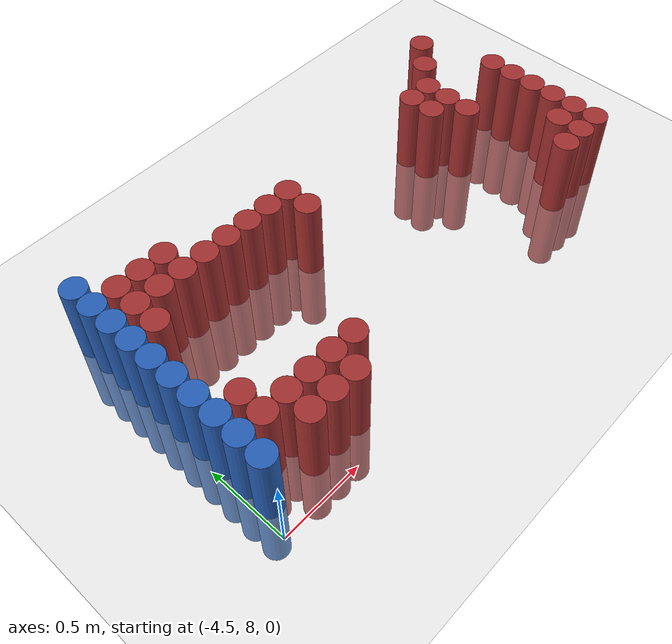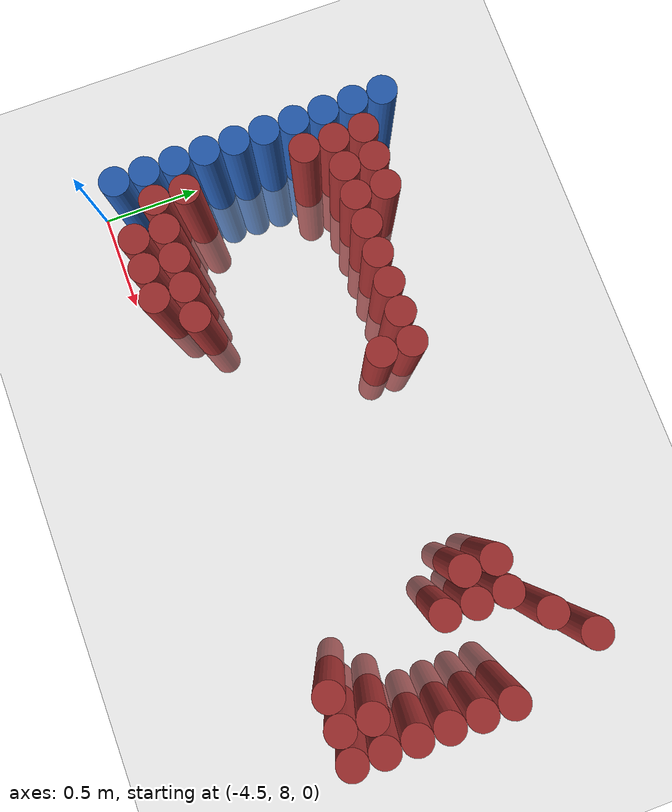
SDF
<sdf version="1.6">
 <world name="default">
  <model name="ground_plane">
   <static>1</static>
   <link name="link">
    <collision name="collision">
     <geometry><plane><normal>0 0 1</normal><size>100 100</size></plane></geometry>
     <surface><friction><ode><mu>100</mu><mu2>50</mu2></ode></friction></surface>
    </collision>
    <visual name="visual">
     <cast_shadows>0</cast_shadows>
     <geometry><plane><normal>0 0 1</normal><size>100 100</size></plane></geometry>
     <material>
      <script><uri>file://media/materials/scripts/gazebo.material</uri><name>Gazebo/Grey</name></script>
     </material>
    </visual>
   </link>
  </model>
  <model name="unit_cylinder_116">
   <static>1</static>
   <pose>-4.425000 8.175000 0.000000 0.000000 0.000000 0.000000</pose>
   <link name="link">
    <inertial>
     <mass>1</mass>
     <inertia><ixx>0.145833</ixx><ixy>0</ixy><ixz>0</ixz><iyy>0.145833</iyy><iyz>0</iyz><izz>0.125</izz></inertia>
    </inertial>
    <collision name="collision">
     <geometry><cylinder><radius>0.075000</radius><length>1</length></cylinder></geometry>
    </collision>
    <visual name="visual">
     <geometry><cylinder><radius>0.075000</radius><length>1</length></cylinder></geometry>
     <material>
      <ambient>0.152000 0.379000 0.720000 1</ambient>
      <diffuse>0.152000 0.379000 0.720000 1</diffuse>
     </material>
     <material>
      <script><name>Gazebo/Grey</name><uri>file://media/materials/scripts/gazebo.material</uri></script>
     </material>
    </visual>
   </link>
  </model>
  <model name="unit_cylinder_117">
   <static>1</static>
   <pose>-4.425000 8.325000 0.000000 0.000000 0.000000 0.000000</pose>
   <link name="link">
    <inertial>
     <mass>1</mass>
     <inertia><ixx>0.145833</ixx><ixy>0</ixy><ixz>0</ixz><iyy>0.145833</iyy><iyz>0</iyz><izz>0.125</izz></inertia>
    </inertial>
    <collision name="collision">
     <geometry><cylinder><radius>0.075000</radius><length>1</length></cylinder></geometry>
    </collision>
    <visual name="visual">
     <geometry><cylinder><radius>0.075000</radius><length>1</length></cylinder></geometry>
     <material>
      <ambient>0.152000 0.379000 0.720000 1</ambient>
      <diffuse>0.152000 0.379000 0.720000 1</diffuse>
     </material>
     <material>
      <script><name>Gazebo/Grey</name><uri>file://media/materials/scripts/gazebo.material</uri></script>
     </material>
    </visual>
   </link>
  </model>
  <model name="unit_cylinder_118">
   <static>1</static>
   <pose>-4.425000 8.475000 0.000000 0.000000 0.000000 0.000000</pose>
   <link name="link">
    <inertial>
     <mass>1</mass>
     <inertia><ixx>0.145833</ixx><ixy>0</ixy><ixz>0</ixz><iyy>0.145833</iyy><iyz>0</iyz><izz>0.125</izz></inertia>
    </inertial>
    <collision name="collision">
     <geometry><cylinder><radius>0.075000</radius><length>1</length></cylinder></geometry>
    </collision>
    <visual name="visual">
     <geometry><cylinder><radius>0.075000</radius><length>1</length></cylinder></geometry>
     <material>
      <ambient>0.152000 0.379000 0.720000 1</ambient>
      <diffuse>0.152000 0.379000 0.720000 1</diffuse>
     </material>
     <material>
      <script><name>Gazebo/Grey</name><uri>file://media/materials/scripts/gazebo.material</uri></script>
     </material>
    </visual>
   </link>
  </model>
  <model name="unit_cylinder_119">
   <static>1</static>
   <pose>-4.425000 8.625000 0.000000 0.000000 0.000000 0.000000</pose>
   <link name="link">
    <inertial>
     <mass>1</mass>
     <inertia><ixx>0.145833</ixx><ixy>0</ixy><ixz>0</ixz><iyy>0.145833</iyy><iyz>0</iyz><izz>0.125</izz></inertia>
    </inertial>
    <collision name="collision">
     <geometry><cylinder><radius>0.075000</radius><length>1</length></cylinder></geometry>
    </collision>
    <visual name="visual">
     <geometry><cylinder><radius>0.075000</radius><length>1</length></cylinder></geometry>
     <material>
      <ambient>0.152000 0.379000 0.720000 1</ambient>
      <diffuse>0.152000 0.379000 0.720000 1</diffuse>
     </material>
     <material>
      <script><name>Gazebo/Grey</name><uri>file://media/materials/scripts/gazebo.material</uri></script>
     </material>
    </visual>
   </link>
  </model>
  <model name="unit_cylinder_120">
   <static>1</static>
   <pose>-4.425000 8.775000 0.000000 0.000000 0.000000 0.000000</pose>
   <link name="link">
    <inertial>
     <mass>1</mass>
     <inertia><ixx>0.145833</ixx><ixy>0</ixy><ixz>0</ixz><iyy>0.145833</iyy><iyz>0</iyz><izz>0.125</izz></inertia>
    </inertial>
    <collision name="collision">
     <geometry><cylinder><radius>0.075000</radius><length>1</length></cylinder></geometry>
    </collision>
    <visual name="visual">
     <geometry><cylinder><radius>0.075000</radius><length>1</length></cylinder></geometry>
     <material>
      <ambient>0.152000 0.379000 0.720000 1</ambient>
      <diffuse>0.152000 0.379000 0.720000 1</diffuse>
     </material>
     <material>
      <script><name>Gazebo/Grey</name><uri>file://media/materials/scripts/gazebo.material</uri></script>
     </material>
    </visual>
   </link>
  </model>
  <model name="unit_cylinder_121">
   <static>1</static>
   <pose>-4.425000 8.925000 0.000000 0.000000 0.000000 0.000000</pose>
   <link name="link">
    <inertial>
     <mass>1</mass>
     <inertia><ixx>0.145833</ixx><ixy>0</ixy><ixz>0</ixz><iyy>0.145833</iyy><iyz>0</iyz><izz>0.125</izz></inertia>
    </inertial>
    <collision name="collision">
     <geometry><cylinder><radius>0.075000</radius><length>1</length></cylinder></geometry>
    </collision>
    <visual name="visual">
     <geometry><cylinder><radius>0.075000</radius><length>1</length></cylinder></geometry>
     <material>
      <ambient>0.152000 0.379000 0.720000 1</ambient>
      <diffuse>0.152000 0.379000 0.720000 1</diffuse>
     </material>
     <material>
      <script><name>Gazebo/Grey</name><uri>file://media/materials/scripts/gazebo.material</uri></script>
     </material>
    </visual>
   </link>
  </model>
  <model name="unit_cylinder_122">
   <static>1</static>
   <pose>-4.425000 9.075000 0.000000 0.000000 0.000000 0.000000</pose>
   <link name="link">
    <inertial>
     <mass>1</mass>
     <inertia><ixx>0.145833</ixx><ixy>0</ixy><ixz>0</ixz><iyy>0.145833</iyy><iyz>0</iyz><izz>0.125</izz></inertia>
    </inertial>
    <collision name="collision">
     <geometry><cylinder><radius>0.075000</radius><length>1</length></cylinder></geometry>
    </collision>
    <visual name="visual">
     <geometry><cylinder><radius>0.075000</radius><length>1</length></cylinder></geometry>
     <material>
      <ambient>0.152000 0.379000 0.720000 1</ambient>
      <diffuse>0.152000 0.379000 0.720000 1</diffuse>
     </material>
     <material>
      <script><name>Gazebo/Grey</name><uri>file://media/materials/scripts/gazebo.material</uri></script>
     </material>
    </visual>
   </link>
  </model>
  <model name="unit_cylinder_123">
   <static>1</static>
   <pose>-4.425000 9.225000 0.000000 0.000000 0.000000 0.000000</pose>
   <link name="link">
    <inertial>
     <mass>1</mass>
     <inertia><ixx>0.145833</ixx><ixy>0</ixy><ixz>0</ixz><iyy>0.145833</iyy><iyz>0</iyz><izz>0.125</izz></inertia>
    </inertial>
    <collision name="collision">
     <geometry><cylinder><radius>0.075000</radius><length>1</length></cylinder></geometry>
    </collision>
    <visual name="visual">
     <geometry><cylinder><radius>0.075000</radius><length>1</length></cylinder></geometry>
     <material>
      <ambient>0.152000 0.379000 0.720000 1</ambient>
      <diffuse>0.152000 0.379000 0.720000 1</diffuse>
     </material>
     <material>
      <script><name>Gazebo/Grey</name><uri>file://media/materials/scripts/gazebo.material</uri></script>
     </material>
    </visual>
   </link>
  </model>
  <model name="unit_cylinder_124">
   <static>1</static>
   <pose>-4.425000 9.375000 0.000000 0.000000 0.000000 0.000000</pose>
   <link name="link">
    <inertial>
     <mass>1</mass>
     <inertia><ixx>0.145833</ixx><ixy>0</ixy><ixz>0</ixz><iyy>0.145833</iyy><iyz>0</iyz><izz>0.125</izz></inertia>
    </inertial>
    <collision name="collision">
     <geometry><cylinder><radius>0.075000</radius><length>1</length></cylinder></geometry>
    </collision>
    <visual name="visual">
     <geometry><cylinder><radius>0.075000</radius><length>1</length></cylinder></geometry>
     <material>
      <ambient>0.152000 0.379000 0.720000 1</ambient>
      <diffuse>0.152000 0.379000 0.720000 1</diffuse>
     </material>
     <material>
      <script><name>Gazebo/Grey</name><uri>file://media/materials/scripts/gazebo.material</uri></script>
     </material>
    </visual>
   </link>
  </model>
  <model name="unit_cylinder_125">
   <static>1</static>
   <pose>-4.425000 9.525000 0.000000 0.000000 0.000000 0.000000</pose>
   <link name="link">
    <inertial>
     <mass>1</mass>
     <inertia><ixx>0.145833</ixx><ixy>0</ixy><ixz>0</ixz><iyy>0.145833</iyy><iyz>0</iyz><izz>0.125</izz></inertia>
    </inertial>
    <collision name="collision">
     <geometry><cylinder><radius>0.075000</radius><length>1</length></cylinder></geometry>
    </collision>
    <visual name="visual">
     <geometry><cylinder><radius>0.075000</radius><length>1</length></cylinder></geometry>
     <material>
      <ambient>0.152000 0.379000 0.720000 1</ambient>
      <diffuse>0.152000 0.379000 0.720000 1</diffuse>
     </material>
     <material>
      <script><name>Gazebo/Grey</name><uri>file://media/materials/scripts/gazebo.material</uri></script>
     </material>
    </visual>
   </link>
  </model>
  <model name="unit_cylinder_140">
   <static>1</static>
   <pose>-4.275000 8.325000 0.000000 0.000000 0.000000 0.000000</pose>
   <link name="link">
    <inertial>
     <mass>1</mass>
     <inertia><ixx>0.145833</ixx><ixy>0</ixy><ixz>0</ixz><iyy>0.145833</iyy><iyz>0</iyz><izz>0.125</izz></inertia>
    </inertial>
    <collision name="collision">
     <geometry><cylinder><radius>0.075000</radius><length>1</length></cylinder></geometry>
    </collision>
    <visual name="visual">
     <geometry><cylinder><radius>0.075000</radius><length>1</length></cylinder></geometry>
     <material>
      <ambient>0.648000 0.192000 0.192000 1</ambient>
      <diffuse>0.648000 0.192000 0.192000 1</diffuse>
     </material>
     <material>
      <script><name>Gazebo/Grey</name><uri>file://media/materials/scripts/gazebo.material</uri></script>
     </material>
    </visual>
   </link>
  </model>
  <model name="unit_cylinder_141">
   <static>1</static>
   <pose>-4.275000 8.475000 0.000000 0.000000 0.000000 0.000000</pose>
   <link name="link">
    <inertial>
     <mass>1</mass>
     <inertia><ixx>0.145833</ixx><ixy>0</ixy><ixz>0</ixz><iyy>0.145833</iyy><iyz>0</iyz><izz>0.125</izz></inertia>
    </inertial>
    <collision name="collision">
     <geometry><cylinder><radius>0.075000</radius><length>1</length></cylinder></geometry>
    </collision>
    <visual name="visual">
     <geometry><cylinder><radius>0.075000</radius><length>1</length></cylinder></geometry>
     <material>
      <ambient>0.648000 0.192000 0.192000 1</ambient>
      <diffuse>0.648000 0.192000 0.192000 1</diffuse>
     </material>
     <material>
      <script><name>Gazebo/Grey</name><uri>file://media/materials/scripts/gazebo.material</uri></script>
     </material>
    </visual>
   </link>
  </model>
  <model name="unit_cylinder_142">
   <static>1</static>
   <pose>-4.275000 9.075000 0.000000 0.000000 0.000000 0.000000</pose>
   <link name="link">
    <inertial>
     <mass>1</mass>
     <inertia><ixx>0.145833</ixx><ixy>0</ixy><ixz>0</ixz><iyy>0.145833</iyy><iyz>0</iyz><izz>0.125</izz></inertia>
    </inertial>
    <collision name="collision">
     <geometry><cylinder><radius>0.075000</radius><length>1</length></cylinder></geometry>
    </collision>
    <visual name="visual">
     <geometry><cylinder><radius>0.075000</radius><length>1</length></cylinder></geometry>
     <material>
      <ambient>0.648000 0.192000 0.192000 1</ambient>
      <diffuse>0.648000 0.192000 0.192000 1</diffuse>
     </material>
     <material>
      <script><name>Gazebo/Grey</name><uri>file://media/materials/scripts/gazebo.material</uri></script>
     </material>
    </visual>
   </link>
  </model>
  <model name="unit_cylinder_143">
   <static>1</static>
   <pose>-4.275000 9.225000 0.000000 0.000000 0.000000 0.000000</pose>
   <link name="link">
    <inertial>
     <mass>1</mass>
     <inertia><ixx>0.145833</ixx><ixy>0</ixy><ixz>0</ixz><iyy>0.145833</iyy><iyz>0</iyz><izz>0.125</izz></inertia>
    </inertial>
    <collision name="collision">
     <geometry><cylinder><radius>0.075000</radius><length>1</length></cylinder></geometry>
    </collision>
    <visual name="visual">
     <geometry><cylinder><radius>0.075000</radius><length>1</length></cylinder></geometry>
     <material>
      <ambient>0.648000 0.192000 0.192000 1</ambient>
      <diffuse>0.648000 0.192000 0.192000 1</diffuse>
     </material>
     <material>
      <script><name>Gazebo/Grey</name><uri>file://media/materials/scripts/gazebo.material</uri></script>
     </material>
    </visual>
   </link>
  </model>
  <model name="unit_cylinder_144">
   <static>1</static>
   <pose>-4.275000 9.375000 0.000000 0.000000 0.000000 0.000000</pose>
   <link name="link">
    <inertial>
     <mass>1</mass>
     <inertia><ixx>0.145833</ixx><ixy>0</ixy><ixz>0</ixz><iyy>0.145833</iyy><iyz>0</iyz><izz>0.125</izz></inertia>
    </inertial>
    <collision name="collision">
     <geometry><cylinder><radius>0.075000</radius><length>1</length></cylinder></geometry>
    </collision>
    <visual name="visual">
     <geometry><cylinder><radius>0.075000</radius><length>1</length></cylinder></geometry>
     <material>
      <ambient>0.648000 0.192000 0.192000 1</ambient>
      <diffuse>0.648000 0.192000 0.192000 1</diffuse>
     </material>
     <material>
      <script><name>Gazebo/Grey</name><uri>file://media/materials/scripts/gazebo.material</uri></script>
     </material>
    </visual>
   </link>
  </model>
  <model name="unit_cylinder_149">
   <static>1</static>
   <pose>-4.125000 8.175000 0.000000 0.000000 0.000000 0.000000</pose>
   <link name="link">
    <inertial>
     <mass>1</mass>
     <inertia><ixx>0.145833</ixx><ixy>0</ixy><ixz>0</ixz><iyy>0.145833</iyy><iyz>0</iyz><izz>0.125</izz></inertia>
    </inertial>
    <collision name="collision">
     <geometry><cylinder><radius>0.075000</radius><length>1</length></cylinder></geometry>
    </collision>
    <visual name="visual">
     <geometry><cylinder><radius>0.075000</radius><length>1</length></cylinder></geometry>
     <material>
      <ambient>0.648000 0.192000 0.192000 1</ambient>
      <diffuse>0.648000 0.192000 0.192000 1</diffuse>
     </material>
     <material>
      <script><name>Gazebo/Grey</name><uri>file://media/materials/scripts/gazebo.material</uri></script>
     </material>
    </visual>
   </link>
  </model>
  <model name="unit_cylinder_150">
   <static>1</static>
   <pose>-4.125000 8.325000 0.000000 0.000000 0.000000 0.000000</pose>
   <link name="link">
    <inertial>
     <mass>1</mass>
     <inertia><ixx>0.145833</ixx><ixy>0</ixy><ixz>0</ixz><iyy>0.145833</iyy><iyz>0</iyz><izz>0.125</izz></inertia>
    </inertial>
    <collision name="collision">
     <geometry><cylinder><radius>0.075000</radius><length>1</length></cylinder></geometry>
    </collision>
    <visual name="visual">
     <geometry><cylinder><radius>0.075000</radius><length>1</length></cylinder></geometry>
     <material>
      <ambient>0.648000 0.192000 0.192000 1</ambient>
      <diffuse>0.648000 0.192000 0.192000 1</diffuse>
     </material>
     <material>
      <script><name>Gazebo/Grey</name><uri>file://media/materials/scripts/gazebo.material</uri></script>
     </material>
    </visual>
   </link>
  </model>
  <model name="unit_cylinder_151">
   <static>1</static>
   <pose>-4.125000 9.225000 0.000000 0.000000 0.000000 0.000000</pose>
   <link name="link">
    <inertial>
     <mass>1</mass>
     <inertia><ixx>0.145833</ixx><ixy>0</ixy><ixz>0</ixz><iyy>0.145833</iyy><iyz>0</iyz><izz>0.125</izz></inertia>
    </inertial>
    <collision name="collision">
     <geometry><cylinder><radius>0.075000</radius><length>1</length></cylinder></geometry>
    </collision>
    <visual name="visual">
     <geometry><cylinder><radius>0.075000</radius><length>1</length></cylinder></geometry>
     <material>
      <ambient>0.648000 0.192000 0.192000 1</ambient>
      <diffuse>0.648000 0.192000 0.192000 1</diffuse>
     </material>
     <material>
      <script><name>Gazebo/Grey</name><uri>file://media/materials/scripts/gazebo.material</uri></script>
     </material>
    </visual>
   </link>
  </model>
  <model name="unit_cylinder_152">
   <static>1</static>
   <pose>-4.125000 9.375000 0.000000 0.000000 0.000000 0.000000</pose>
   <link name="link">
    <inertial>
     <mass>1</mass>
     <inertia><ixx>0.145833</ixx><ixy>0</ixy><ixz>0</ixz><iyy>0.145833</iyy><iyz>0</iyz><izz>0.125</izz></inertia>
    </inertial>
    <collision name="collision">
     <geometry><cylinder><radius>0.075000</radius><length>1</length></cylinder></geometry>
    </collision>
    <visual name="visual">
     <geometry><cylinder><radius>0.075000</radius><length>1</length></cylinder></geometry>
     <material>
      <ambient>0.648000 0.192000 0.192000 1</ambient>
      <diffuse>0.648000 0.192000 0.192000 1</diffuse>
     </material>
     <material>
      <script><name>Gazebo/Grey</name><uri>file://media/materials/scripts/gazebo.material</uri></script>
     </material>
    </visual>
   </link>
  </model>
  <model name="unit_cylinder_154">
   <static>1</static>
   <pose>-3.975000 8.175000 0.000000 0.000000 0.000000 0.000000</pose>
   <link name="link">
    <inertial>
     <mass>1</mass>
     <inertia><ixx>0.145833</ixx><ixy>0</ixy><ixz>0</ixz><iyy>0.145833</iyy><iyz>0</iyz><izz>0.125</izz></inertia>
    </inertial>
    <collision name="collision">
     <geometry><cylinder><radius>0.075000</radius><length>1</length></cylinder></geometry>
    </collision>
    <visual name="visual">
     <geometry><cylinder><radius>0.075000</radius><length>1</length></cylinder></geometry>
     <material>
      <ambient>0.648000 0.192000 0.192000 1</ambient>
      <diffuse>0.648000 0.192000 0.192000 1</diffuse>
     </material>
     <material>
      <script><name>Gazebo/Grey</name><uri>file://media/materials/scripts/gazebo.material</uri></script>
     </material>
    </visual>
   </link>
  </model>
  <model name="unit_cylinder_155">
   <static>1</static>
   <pose>-3.975000 8.325000 0.000000 0.000000 0.000000 0.000000</pose>
   <link name="link">
    <inertial>
     <mass>1</mass>
     <inertia><ixx>0.145833</ixx><ixy>0</ixy><ixz>0</ixz><iyy>0.145833</iyy><iyz>0</iyz><izz>0.125</izz></inertia>
    </inertial>
    <collision name="collision">
     <geometry><cylinder><radius>0.075000</radius><length>1</length></cylinder></geometry>
    </collision>
    <visual name="visual">
     <geometry><cylinder><radius>0.075000</radius><length>1</length></cylinder></geometry>
     <material>
      <ambient>0.648000 0.192000 0.192000 1</ambient>
      <diffuse>0.648000 0.192000 0.192000 1</diffuse>
     </material>
     <material>
      <script><name>Gazebo/Grey</name><uri>file://media/materials/scripts/gazebo.material</uri></script>
     </material>
    </visual>
   </link>
  </model>
  <model name="unit_cylinder_156">
   <static>1</static>
   <pose>-3.975000 9.225000 0.000000 0.000000 0.000000 0.000000</pose>
   <link name="link">
    <inertial>
     <mass>1</mass>
     <inertia><ixx>0.145833</ixx><ixy>0</ixy><ixz>0</ixz><iyy>0.145833</iyy><iyz>0</iyz><izz>0.125</izz></inertia>
    </inertial>
    <collision name="collision">
     <geometry><cylinder><radius>0.075000</radius><length>1</length></cylinder></geometry>
    </collision>
    <visual name="visual">
     <geometry><cylinder><radius>0.075000</radius><length>1</length></cylinder></geometry>
     <material>
      <ambient>0.648000 0.192000 0.192000 1</ambient>
      <diffuse>0.648000 0.192000 0.192000 1</diffuse>
     </material>
     <material>
      <script><name>Gazebo/Grey</name><uri>file://media/materials/scripts/gazebo.material</uri></script>
     </material>
    </visual>
   </link>
  </model>
  <model name="unit_cylinder_157">
   <static>1</static>
   <pose>-3.975000 9.375000 0.000000 0.000000 0.000000 0.000000</pose>
   <link name="link">
    <inertial>
     <mass>1</mass>
     <inertia><ixx>0.145833</ixx><ixy>0</ixy><ixz>0</ixz><iyy>0.145833</iyy><iyz>0</iyz><izz>0.125</izz></inertia>
    </inertial>
    <collision name="collision">
     <geometry><cylinder><radius>0.075000</radius><length>1</length></cylinder></geometry>
    </collision>
    <visual name="visual">
     <geometry><cylinder><radius>0.075000</radius><length>1</length></cylinder></geometry>
     <material>
      <ambient>0.648000 0.192000 0.192000 1</ambient>
      <diffuse>0.648000 0.192000 0.192000 1</diffuse>
     </material>
     <material>
      <script><name>Gazebo/Grey</name><uri>file://media/materials/scripts/gazebo.material</uri></script>
     </material>
    </visual>
   </link>
  </model>
  <model name="unit_cylinder_159">
   <static>1</static>
   <pose>-3.825000 8.175000 0.000000 0.000000 0.000000 0.000000</pose>
   <link name="link">
    <inertial>
     <mass>1</mass>
     <inertia><ixx>0.145833</ixx><ixy>0</ixy><ixz>0</ixz><iyy>0.145833</iyy><iyz>0</iyz><izz>0.125</izz></inertia>
    </inertial>
    <collision name="collision">
     <geometry><cylinder><radius>0.075000</radius><length>1</length></cylinder></geometry>
    </collision>
    <visual name="visual">
     <geometry><cylinder><radius>0.075000</radius><length>1</length></cylinder></geometry>
     <material>
      <ambient>0.648000 0.192000 0.192000 1</ambient>
      <diffuse>0.648000 0.192000 0.192000 1</diffuse>
     </material>
     <material>
      <script><name>Gazebo/Grey</name><uri>file://media/materials/scripts/gazebo.material</uri></script>
     </material>
    </visual>
   </link>
  </model>
  <model name="unit_cylinder_160">
   <static>1</static>
   <pose>-3.825000 8.325000 0.000000 0.000000 0.000000 0.000000</pose>
   <link name="link">
    <inertial>
     <mass>1</mass>
     <inertia><ixx>0.145833</ixx><ixy>0</ixy><ixz>0</ixz><iyy>0.145833</iyy><iyz>0</iyz><izz>0.125</izz></inertia>
    </inertial>
    <collision name="collision">
     <geometry><cylinder><radius>0.075000</radius><length>1</length></cylinder></geometry>
    </collision>
    <visual name="visual">
     <geometry><cylinder><radius>0.075000</radius><length>1</length></cylinder></geometry>
     <material>
      <ambient>0.648000 0.192000 0.192000 1</ambient>
      <diffuse>0.648000 0.192000 0.192000 1</diffuse>
     </material>
     <material>
      <script><name>Gazebo/Grey</name><uri>file://media/materials/scripts/gazebo.material</uri></script>
     </material>
    </visual>
   </link>
  </model>
  <model name="unit_cylinder_161">
   <static>1</static>
   <pose>-3.825000 9.225000 0.000000 0.000000 0.000000 0.000000</pose>
   <link name="link">
    <inertial>
     <mass>1</mass>
     <inertia><ixx>0.145833</ixx><ixy>0</ixy><ixz>0</ixz><iyy>0.145833</iyy><iyz>0</iyz><izz>0.125</izz></inertia>
    </inertial>
    <collision name="collision">
     <geometry><cylinder><radius>0.075000</radius><length>1</length></cylinder></geometry>
    </collision>
    <visual name="visual">
     <geometry><cylinder><radius>0.075000</radius><length>1</length></cylinder></geometry>
     <material>
      <ambient>0.648000 0.192000 0.192000 1</ambient>
      <diffuse>0.648000 0.192000 0.192000 1</diffuse>
     </material>
     <material>
      <script><name>Gazebo/Grey</name><uri>file://media/materials/scripts/gazebo.material</uri></script>
     </material>
    </visual>
   </link>
  </model>
  <model name="unit_cylinder_164">
   <static>1</static>
   <pose>-3.675000 8.325000 0.000000 0.000000 0.000000 0.000000</pose>
   <link name="link">
    <inertial>
     <mass>1</mass>
     <inertia><ixx>0.145833</ixx><ixy>0</ixy><ixz>0</ixz><iyy>0.145833</iyy><iyz>0</iyz><izz>0.125</izz></inertia>
    </inertial>
    <collision name="collision">
     <geometry><cylinder><radius>0.075000</radius><length>1</length></cylinder></geometry>
    </collision>
    <visual name="visual">
     <geometry><cylinder><radius>0.075000</radius><length>1</length></cylinder></geometry>
     <material>
      <ambient>0.648000 0.192000 0.192000 1</ambient>
      <diffuse>0.648000 0.192000 0.192000 1</diffuse>
     </material>
     <material>
      <script><name>Gazebo/Grey</name><uri>file://media/materials/scripts/gazebo.material</uri></script>
     </material>
    </visual>
   </link>
  </model>
  <model name="unit_cylinder_165">
   <static>1</static>
   <pose>-3.675000 9.225000 0.000000 0.000000 0.000000 0.000000</pose>
   <link name="link">
    <inertial>
     <mass>1</mass>
     <inertia><ixx>0.145833</ixx><ixy>0</ixy><ixz>0</ixz><iyy>0.145833</iyy><iyz>0</iyz><izz>0.125</izz></inertia>
    </inertial>
    <collision name="collision">
     <geometry><cylinder><radius>0.075000</radius><length>1</length></cylinder></geometry>
    </collision>
    <visual name="visual">
     <geometry><cylinder><radius>0.075000</radius><length>1</length></cylinder></geometry>
     <material>
      <ambient>0.648000 0.192000 0.192000 1</ambient>
      <diffuse>0.648000 0.192000 0.192000 1</diffuse>
     </material>
     <material>
      <script><name>Gazebo/Grey</name><uri>file://media/materials/scripts/gazebo.material</uri></script>
     </material>
    </visual>
   </link>
  </model>
  <model name="unit_cylinder_166">
   <static>1</static>
   <pose>-3.525000 9.225000 0.000000 0.000000 0.000000 0.000000</pose>
   <link name="link">
    <inertial>
     <mass>1</mass>
     <inertia><ixx>0.145833</ixx><ixy>0</ixy><ixz>0</ixz><iyy>0.145833</iyy><iyz>0</iyz><izz>0.125</izz></inertia>
    </inertial>
    <collision name="collision">
     <geometry><cylinder><radius>0.075000</radius><length>1</length></cylinder></geometry>
    </collision>
    <visual name="visual">
     <geometry><cylinder><radius>0.075000</radius><length>1</length></cylinder></geometry>
     <material>
      <ambient>0.648000 0.192000 0.192000 1</ambient>
      <diffuse>0.648000 0.192000 0.192000 1</diffuse>
     </material>
     <material>
      <script><name>Gazebo/Grey</name><uri>file://media/materials/scripts/gazebo.material</uri></script>
     </material>
    </visual>
   </link>
  </model>
  <model name="unit_cylinder_167">
   <static>1</static>
   <pose>-3.375000 9.225000 0.000000 0.000000 0.000000 0.000000</pose>
   <link name="link">
    <inertial>
     <mass>1</mass>
     <inertia><ixx>0.145833</ixx><ixy>0</ixy><ixz>0</ixz><iyy>0.145833</iyy><iyz>0</iyz><izz>0.125</izz></inertia>
    </inertial>
    <collision name="collision">
     <geometry><cylinder><radius>0.075000</radius><length>1</length></cylinder></geometry>
    </collision>
    <visual name="visual">
     <geometry><cylinder><radius>0.075000</radius><length>1</length></cylinder></geometry>
     <material>
      <ambient>0.648000 0.192000 0.192000 1</ambient>
      <diffuse>0.648000 0.192000 0.192000 1</diffuse>
     </material>
     <material>
      <script><name>Gazebo/Grey</name><uri>file://media/materials/scripts/gazebo.material</uri></script>
     </material>
    </visual>
   </link>
  </model>
  <model name="unit_cylinder_168">
   <static>1</static>
   <pose>-3.225000 9.075000 0.000000 0.000000 0.000000 0.000000</pose>
   <link name="link">
    <inertial>
     <mass>1</mass>
     <inertia><ixx>0.145833</ixx><ixy>0</ixy><ixz>0</ixz><iyy>0.145833</iyy><iyz>0</iyz><izz>0.125</izz></inertia>
    </inertial>
    <collision name="collision">
     <geometry><cylinder><radius>0.075000</radius><length>1</length></cylinder></geometry>
    </collision>
    <visual name="visual">
     <geometry><cylinder><radius>0.075000</radius><length>1</length></cylinder></geometry>
     <material>
      <ambient>0.648000 0.192000 0.192000 1</ambient>
      <diffuse>0.648000 0.192000 0.192000 1</diffuse>
     </material>
     <material>
      <script><name>Gazebo/Grey</name><uri>file://media/materials/scripts/gazebo.material</uri></script>
     </material>
    </visual>
   </link>
  </model>
  <model name="unit_cylinder_169">
   <static>1</static>
   <pose>-3.225000 9.225000 0.000000 0.000000 0.000000 0.000000</pose>
   <link name="link">
    <inertial>
     <mass>1</mass>
     <inertia><ixx>0.145833</ixx><ixy>0</ixy><ixz>0</ixz><iyy>0.145833</iyy><iyz>0</iyz><izz>0.125</izz></inertia>
    </inertial>
    <collision name="collision">
     <geometry><cylinder><radius>0.075000</radius><length>1</length></cylinder></geometry>
    </collision>
    <visual name="visual">
     <geometry><cylinder><radius>0.075000</radius><length>1</length></cylinder></geometry>
     <material>
      <ambient>0.648000 0.192000 0.192000 1</ambient>
      <diffuse>0.648000 0.192000 0.192000 1</diffuse>
     </material>
     <material>
      <script><name>Gazebo/Grey</name><uri>file://media/materials/scripts/gazebo.material</uri></script>
     </material>
    </visual>
   </link>
  </model>
  <model name="unit_cylinder_180">
   <static>1</static>
   <pose>-2.175000 9.075000 0.000000 0.000000 0.000000 0.000000</pose>
   <link name="link">
    <inertial>
     <mass>1</mass>
     <inertia><ixx>0.145833</ixx><ixy>0</ixy><ixz>0</ixz><iyy>0.145833</iyy><iyz>0</iyz><izz>0.125</izz></inertia>
    </inertial>
    <collision name="collision">
     <geometry><cylinder><radius>0.075000</radius><length>1</length></cylinder></geometry>
    </collision>
    <visual name="visual">
     <geometry><cylinder><radius>0.075000</radius><length>1</length></cylinder></geometry>
     <material>
      <ambient>0.648000 0.192000 0.192000 1</ambient>
      <diffuse>0.648000 0.192000 0.192000 1</diffuse>
     </material>
     <material>
      <script><name>Gazebo/Grey</name><uri>file://media/materials/scripts/gazebo.material</uri></script>
     </material>
    </visual>
   </link>
  </model>
  <model name="unit_cylinder_181">
   <static>1</static>
   <pose>-2.175000 9.225000 0.000000 0.000000 0.000000 0.000000</pose>
   <link name="link">
    <inertial>
     <mass>1</mass>
     <inertia><ixx>0.145833</ixx><ixy>0</ixy><ixz>0</ixz><iyy>0.145833</iyy><iyz>0</iyz><izz>0.125</izz></inertia>
    </inertial>
    <collision name="collision">
     <geometry><cylinder><radius>0.075000</radius><length>1</length></cylinder></geometry>
    </collision>
    <visual name="visual">
     <geometry><cylinder><radius>0.075000</radius><length>1</length></cylinder></geometry>
     <material>
      <ambient>0.648000 0.192000 0.192000 1</ambient>
      <diffuse>0.648000 0.192000 0.192000 1</diffuse>
     </material>
     <material>
      <script><name>Gazebo/Grey</name><uri>file://media/materials/scripts/gazebo.material</uri></script>
     </material>
    </visual>
   </link>
  </model>
  <model name="unit_cylinder_185">
   <static>1</static>
   <pose>-2.025000 8.925000 0.000000 0.000000 0.000000 0.000000</pose>
   <link name="link">
    <inertial>
     <mass>1</mass>
     <inertia><ixx>0.145833</ixx><ixy>0</ixy><ixz>0</ixz><iyy>0.145833</iyy><iyz>0</iyz><izz>0.125</izz></inertia>
    </inertial>
    <collision name="collision">
     <geometry><cylinder><radius>0.075000</radius><length>1</length></cylinder></geometry>
    </collision>
    <visual name="visual">
     <geometry><cylinder><radius>0.075000</radius><length>1</length></cylinder></geometry>
     <material>
      <ambient>0.648000 0.192000 0.192000 1</ambient>
      <diffuse>0.648000 0.192000 0.192000 1</diffuse>
     </material>
     <material>
      <script><name>Gazebo/Grey</name><uri>file://media/materials/scripts/gazebo.material</uri></script>
     </material>
    </visual>
   </link>
  </model>
  <model name="unit_cylinder_186">
   <static>1</static>
   <pose>-2.025000 9.075000 0.000000 0.000000 0.000000 0.000000</pose>
   <link name="link">
    <inertial>
     <mass>1</mass>
     <inertia><ixx>0.145833</ixx><ixy>0</ixy><ixz>0</ixz><iyy>0.145833</iyy><iyz>0</iyz><izz>0.125</izz></inertia>
    </inertial>
    <collision name="collision">
     <geometry><cylinder><radius>0.075000</radius><length>1</length></cylinder></geometry>
    </collision>
    <visual name="visual">
     <geometry><cylinder><radius>0.075000</radius><length>1</length></cylinder></geometry>
     <material>
      <ambient>0.648000 0.192000 0.192000 1</ambient>
      <diffuse>0.648000 0.192000 0.192000 1</diffuse>
     </material>
     <material>
      <script><name>Gazebo/Grey</name><uri>file://media/materials/scripts/gazebo.material</uri></script>
     </material>
    </visual>
   </link>
  </model>
  <model name="unit_cylinder_187">
   <static>1</static>
   <pose>-2.025000 9.225000 0.000000 0.000000 0.000000 0.000000</pose>
   <link name="link">
    <inertial>
     <mass>1</mass>
     <inertia><ixx>0.145833</ixx><ixy>0</ixy><ixz>0</ixz><iyy>0.145833</iyy><iyz>0</iyz><izz>0.125</izz></inertia>
    </inertial>
    <collision name="collision">
     <geometry><cylinder><radius>0.075000</radius><length>1</length></cylinder></geometry>
    </collision>
    <visual name="visual">
     <geometry><cylinder><radius>0.075000</radius><length>1</length></cylinder></geometry>
     <material>
      <ambient>0.648000 0.192000 0.192000 1</ambient>
      <diffuse>0.648000 0.192000 0.192000 1</diffuse>
     </material>
     <material>
      <script><name>Gazebo/Grey</name><uri>file://media/materials/scripts/gazebo.material</uri></script>
     </material>
    </visual>
   </link>
  </model>
  <model name="unit_cylinder_193">
   <static>1</static>
   <pose>-1.875000 8.325000 0.000000 0.000000 0.000000 0.000000</pose>
   <link name="link">
    <inertial>
     <mass>1</mass>
     <inertia><ixx>0.145833</ixx><ixy>0</ixy><ixz>0</ixz><iyy>0.145833</iyy><iyz>0</iyz><izz>0.125</izz></inertia>
    </inertial>
    <collision name="collision">
     <geometry><cylinder><radius>0.075000</radius><length>1</length></cylinder></geometry>
    </collision>
    <visual name="visual">
     <geometry><cylinder><radius>0.075000</radius><length>1</length></cylinder></geometry>
     <material>
      <ambient>0.648000 0.192000 0.192000 1</ambient>
      <diffuse>0.648000 0.192000 0.192000 1</diffuse>
     </material>
     <material>
      <script><name>Gazebo/Grey</name><uri>file://media/materials/scripts/gazebo.material</uri></script>
     </material>
    </visual>
   </link>
  </model>
  <model name="unit_cylinder_194">
   <static>1</static>
   <pose>-1.875000 9.375000 0.000000 0.000000 0.000000 0.000000</pose>
   <link name="link">
    <inertial>
     <mass>1</mass>
     <inertia><ixx>0.145833</ixx><ixy>0</ixy><ixz>0</ixz><iyy>0.145833</iyy><iyz>0</iyz><izz>0.125</izz></inertia>
    </inertial>
    <collision name="collision">
     <geometry><cylinder><radius>0.075000</radius><length>1</length></cylinder></geometry>
    </collision>
    <visual name="visual">
     <geometry><cylinder><radius>0.075000</radius><length>1</length></cylinder></geometry>
     <material>
      <ambient>0.648000 0.192000 0.192000 1</ambient>
      <diffuse>0.648000 0.192000 0.192000 1</diffuse>
     </material>
     <material>
      <script><name>Gazebo/Grey</name><uri>file://media/materials/scripts/gazebo.material</uri></script>
     </material>
    </visual>
   </link>
  </model>
  <model name="unit_cylinder_202">
   <static>1</static>
   <pose>-1.725000 8.325000 0.000000 0.000000 0.000000 0.000000</pose>
   <link name="link">
    <inertial>
     <mass>1</mass>
     <inertia><ixx>0.145833</ixx><ixy>0</ixy><ixz>0</ixz><iyy>0.145833</iyy><iyz>0</iyz><izz>0.125</izz></inertia>
    </inertial>
    <collision name="collision">
     <geometry><cylinder><radius>0.075000</radius><length>1</length></cylinder></geometry>
    </collision>
    <visual name="visual">
     <geometry><cylinder><radius>0.075000</radius><length>1</length></cylinder></geometry>
     <material>
      <ambient>0.648000 0.192000 0.192000 1</ambient>
      <diffuse>0.648000 0.192000 0.192000 1</diffuse>
     </material>
     <material>
      <script><name>Gazebo/Grey</name><uri>file://media/materials/scripts/gazebo.material</uri></script>
     </material>
    </visual>
   </link>
  </model>
  <model name="unit_cylinder_203">
   <static>1</static>
   <pose>-1.725000 8.475000 0.000000 0.000000 0.000000 0.000000</pose>
   <link name="link">
    <inertial>
     <mass>1</mass>
     <inertia><ixx>0.145833</ixx><ixy>0</ixy><ixz>0</ixz><iyy>0.145833</iyy><iyz>0</iyz><izz>0.125</izz></inertia>
    </inertial>
    <collision name="collision">
     <geometry><cylinder><radius>0.075000</radius><length>1</length></cylinder></geometry>
    </collision>
    <visual name="visual">
     <geometry><cylinder><radius>0.075000</radius><length>1</length></cylinder></geometry>
     <material>
      <ambient>0.648000 0.192000 0.192000 1</ambient>
      <diffuse>0.648000 0.192000 0.192000 1</diffuse>
     </material>
     <material>
      <script><name>Gazebo/Grey</name><uri>file://media/materials/scripts/gazebo.material</uri></script>
     </material>
    </visual>
   </link>
  </model>
  <model name="unit_cylinder_204">
   <static>1</static>
   <pose>-1.725000 9.525000 0.000000 0.000000 0.000000 0.000000</pose>
   <link name="link">
    <inertial>
     <mass>1</mass>
     <inertia><ixx>0.145833</ixx><ixy>0</ixy><ixz>0</ixz><iyy>0.145833</iyy><iyz>0</iyz><izz>0.125</izz></inertia>
    </inertial>
    <collision name="collision">
     <geometry><cylinder><radius>0.075000</radius><length>1</length></cylinder></geometry>
    </collision>
    <visual name="visual">
     <geometry><cylinder><radius>0.075000</radius><length>1</length></cylinder></geometry>
     <material>
      <ambient>0.648000 0.192000 0.192000 1</ambient>
      <diffuse>0.648000 0.192000 0.192000 1</diffuse>
     </material>
     <material>
      <script><name>Gazebo/Grey</name><uri>file://media/materials/scripts/gazebo.material</uri></script>
     </material>
    </visual>
   </link>
  </model>
  <model name="unit_cylinder_215">
   <static>1</static>
   <pose>-1.575000 8.325000 0.000000 0.000000 0.000000 0.000000</pose>
   <link name="link">
    <inertial>
     <mass>1</mass>
     <inertia><ixx>0.145833</ixx><ixy>0</ixy><ixz>0</ixz><iyy>0.145833</iyy><iyz>0</iyz><izz>0.125</izz></inertia>
    </inertial>
    <collision name="collision">
     <geometry><cylinder><radius>0.075000</radius><length>1</length></cylinder></geometry>
    </collision>
    <visual name="visual">
     <geometry><cylinder><radius>0.075000</radius><length>1</length></cylinder></geometry>
     <material>
      <ambient>0.648000 0.192000 0.192000 1</ambient>
      <diffuse>0.648000 0.192000 0.192000 1</diffuse>
     </material>
     <material>
      <script><name>Gazebo/Grey</name><uri>file://media/materials/scripts/gazebo.material</uri></script>
     </material>
    </visual>
   </link>
  </model>
  <model name="unit_cylinder_216">
   <static>1</static>
   <pose>-1.575000 8.475000 0.000000 0.000000 0.000000 0.000000</pose>
   <link name="link">
    <inertial>
     <mass>1</mass>
     <inertia><ixx>0.145833</ixx><ixy>0</ixy><ixz>0</ixz><iyy>0.145833</iyy><iyz>0</iyz><izz>0.125</izz></inertia>
    </inertial>
    <collision name="collision">
     <geometry><cylinder><radius>0.075000</radius><length>1</length></cylinder></geometry>
    </collision>
    <visual name="visual">
     <geometry><cylinder><radius>0.075000</radius><length>1</length></cylinder></geometry>
     <material>
      <ambient>0.648000 0.192000 0.192000 1</ambient>
      <diffuse>0.648000 0.192000 0.192000 1</diffuse>
     </material>
     <material>
      <script><name>Gazebo/Grey</name><uri>file://media/materials/scripts/gazebo.material</uri></script>
     </material>
    </visual>
   </link>
  </model>
  <model name="unit_cylinder_217">
   <static>1</static>
   <pose>-1.575000 8.625000 0.000000 0.000000 0.000000 0.000000</pose>
   <link name="link">
    <inertial>
     <mass>1</mass>
     <inertia><ixx>0.145833</ixx><ixy>0</ixy><ixz>0</ixz><iyy>0.145833</iyy><iyz>0</iyz><izz>0.125</izz></inertia>
    </inertial>
    <collision name="collision">
     <geometry><cylinder><radius>0.075000</radius><length>1</length></cylinder></geometry>
    </collision>
    <visual name="visual">
     <geometry><cylinder><radius>0.075000</radius><length>1</length></cylinder></geometry>
     <material>
      <ambient>0.648000 0.192000 0.192000 1</ambient>
      <diffuse>0.648000 0.192000 0.192000 1</diffuse>
     </material>
     <material>
      <script><name>Gazebo/Grey</name><uri>file://media/materials/scripts/gazebo.material</uri></script>
     </material>
    </visual>
   </link>
  </model>
  <model name="unit_cylinder_218">
   <static>1</static>
   <pose>-1.575000 8.775000 0.000000 0.000000 0.000000 0.000000</pose>
   <link name="link">
    <inertial>
     <mass>1</mass>
     <inertia><ixx>0.145833</ixx><ixy>0</ixy><ixz>0</ixz><iyy>0.145833</iyy><iyz>0</iyz><izz>0.125</izz></inertia>
    </inertial>
    <collision name="collision">
     <geometry><cylinder><radius>0.075000</radius><length>1</length></cylinder></geometry>
    </collision>
    <visual name="visual">
     <geometry><cylinder><radius>0.075000</radius><length>1</length></cylinder></geometry>
     <material>
      <ambient>0.648000 0.192000 0.192000 1</ambient>
      <diffuse>0.648000 0.192000 0.192000 1</diffuse>
     </material>
     <material>
      <script><name>Gazebo/Grey</name><uri>file://media/materials/scripts/gazebo.material</uri></script>
     </material>
    </visual>
   </link>
  </model>
  <model name="unit_cylinder_219">
   <static>1</static>
   <pose>-1.575000 8.925000 0.000000 0.000000 0.000000 0.000000</pose>
   <link name="link">
    <inertial>
     <mass>1</mass>
     <inertia><ixx>0.145833</ixx><ixy>0</ixy><ixz>0</ixz><iyy>0.145833</iyy><iyz>0</iyz><izz>0.125</izz></inertia>
    </inertial>
    <collision name="collision">
     <geometry><cylinder><radius>0.075000</radius><length>1</length></cylinder></geometry>
    </collision>
    <visual name="visual">
     <geometry><cylinder><radius>0.075000</radius><length>1</length></cylinder></geometry>
     <material>
      <ambient>0.648000 0.192000 0.192000 1</ambient>
      <diffuse>0.648000 0.192000 0.192000 1</diffuse>
     </material>
     <material>
      <script><name>Gazebo/Grey</name><uri>file://media/materials/scripts/gazebo.material</uri></script>
     </material>
    </visual>
   </link>
  </model>
  <model name="unit_cylinder_220">
   <static>1</static>
   <pose>-1.575000 9.075000 0.000000 0.000000 0.000000 0.000000</pose>
   <link name="link">
    <inertial>
     <mass>1</mass>
     <inertia><ixx>0.145833</ixx><ixy>0</ixy><ixz>0</ixz><iyy>0.145833</iyy><iyz>0</iyz><izz>0.125</izz></inertia>
    </inertial>
    <collision name="collision">
     <geometry><cylinder><radius>0.075000</radius><length>1</length></cylinder></geometry>
    </collision>
    <visual name="visual">
     <geometry><cylinder><radius>0.075000</radius><length>1</length></cylinder></geometry>
     <material>
      <ambient>0.648000 0.192000 0.192000 1</ambient>
      <diffuse>0.648000 0.192000 0.192000 1</diffuse>
     </material>
     <material>
      <script><name>Gazebo/Grey</name><uri>file://media/materials/scripts/gazebo.material</uri></script>
     </material>
    </visual>
   </link>
  </model>
 </world>
</sdf>
